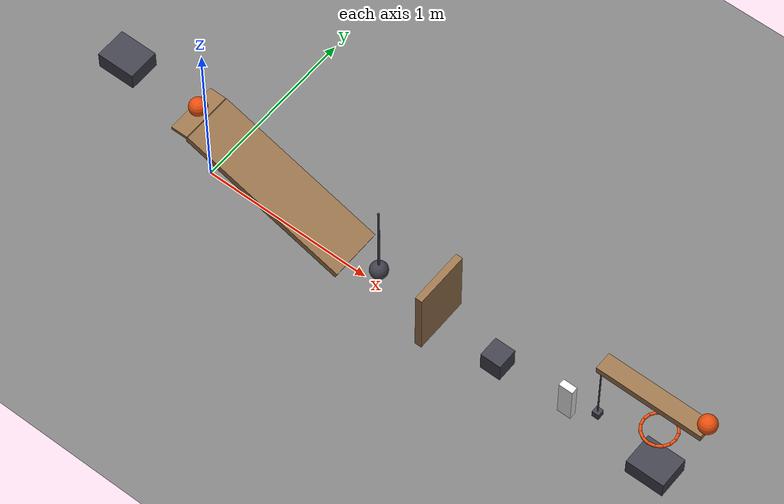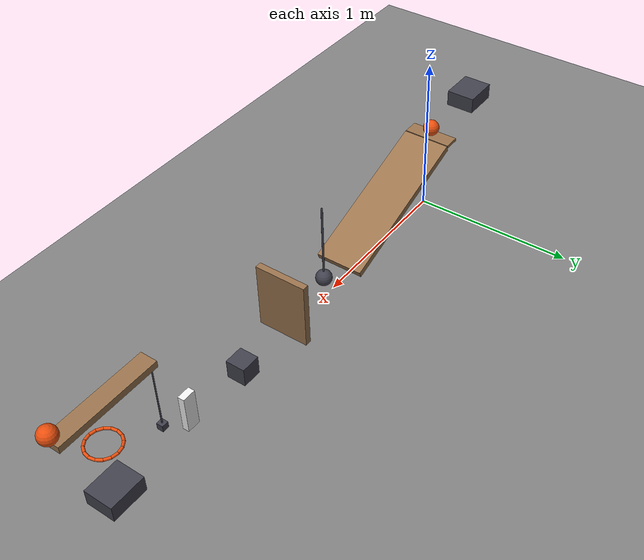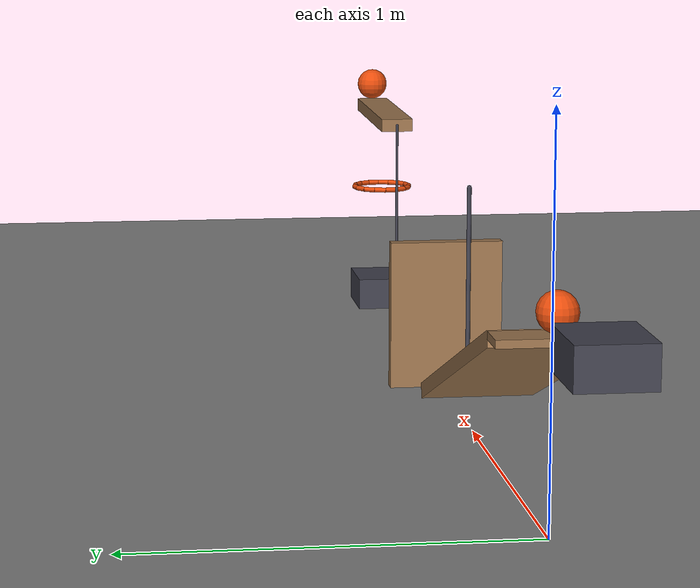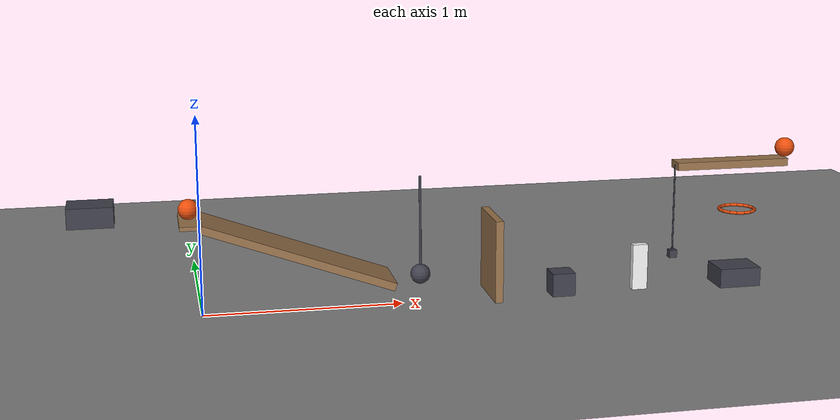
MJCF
<mujoco model="spring_cart_chain">
  <compiler angle="radian"/>
  <option timestep="0.002"/>
  <worldbody>
    <geom name="floor" type="plane" size="8 8 0.1" friction="0.68 0 0"/>
    <body name="ramp1">
      <geom name="ramp1" type="box" pos="0.469847 0 0.302216" size="0.5 0.15 0.02" euler="0 0.349066 0" friction="0.68 0 0" solref="0.01 0.690107" rgba="0.6 0.45 0.3 1"/>
    </body>
    <body name="ball1 seat">
      <geom name="ball1 seat" type="box" pos="-0.05 0 0.48202" size="0.05 0.15 0.01" friction="0.68 0 0" solref="0.01 0.690107" rgba="0.6 0.45 0.3 1"/>
    </body>
    <body name="ball1" pos="-0.05 0 0.54202">
      <freejoint/>
      <geom name="ball1" type="sphere" pos="0 0 0" size="0.05" mass="0.2" condim="6" friction="0.68 0 0" solref="0.01 0.690107" rgba="0.9 0.3 0.05 1"/>
    </body>
    <body name="cart1" pos="-0.51 0 0.54202">
      <joint name="cart1_track" type="slide" pos="0 0 0" axis="1 0 0" limited="true" range="-0.2 0.3" stiffness="18" springref="0" damping="0.2"/>
      <geom name="cart1" type="box" pos="0 0 0" size="0.11 0.09 0.05" mass="0.5" friction="0.68 0 0" solref="0.01 0.690107" rgba="0.25 0.25 0.3 1"/>
    </body>
    <body name="pendulum1" pos="2.17939 0 0.8">
      <joint name="pendulum1_hinge" type="hinge" pos="0 0 0" axis="0 1 0" limited="true" range="-0.698132 0" damping="0.04"/>
      <geom name="pendulum1" type="sphere" pos="-1.08969 0 -0.65" size="0.05" mass="0.3" friction="0.68 0 0" solref="0.01 0.690107" rgba="0.25 0.25 0.3 1"/>
      <geom name="pendulum rigid rod" type="capsule" size="0.006" fromto="-1.08969 0 -0.15 -1.08969 0 -0.6" mass="0.05" friction="0.68 0 0" solref="0.01 0.690107" rgba="0.25 0.25 0.3 1"/>
    </body>
    <body name="door1" pos="1.46109 -0.16 0.23">
      <joint name="door1_hinge" type="hinge" pos="0 0 0" axis="0 0 1" limited="true" range="-1.22173 0" damping="0.04"/>
      <geom name="door1" type="box" pos="0 0.16 0" size="0.02 0.16 0.21" mass="0.45" friction="0.68 0 0" solref="0.01 0.690107" rgba="0.6 0.45 0.3 1"/>
    </body>
    <body name="block1" pos="1.82863 0 0.06">
      <freejoint/>
      <geom name="block1" type="box" pos="0 0 0" size="0.06 0.06 0.06" mass="0.35" friction="0.68 0 0" solref="0.01 0.690107" rgba="0.25 0.25 0.3 1"/>
    </body>
    <body name="domino1" pos="2.24863 0 0.12">
      <freejoint/>
      <geom name="domino1" type="box" pos="0 0 0" size="0.04 0.02 0.12" mass="0.25" friction="0.68 0 0" solref="0.01 0.690107" rgba="0.95 0.95 0.95 1"/>
    </body>
    <body name="lever1" pos="5.45726 0 1.3">
      <joint name="lever1_hinge" type="hinge" pos="0 0 0" axis="0 1 0" limited="true" range="-0.785398 0" damping="0.04"/>
      <geom name="lever1" type="box" pos="-2.72863 0 -0.65" size="0.3 0.05 0.02" mass="0.498" friction="0.68 0 0" solref="0.01 0.690107" rgba="0.6 0.45 0.3 1"/>
      <geom name="lever drop link" type="capsule" size="0.004" fromto="-3.02863 0 -0.65 -3.02863 0 -1.12" mass="0.001" friction="0.68 0 0" solref="0.01 0.690107" rgba="0.25 0.25 0.3 1"/>
      <geom name="lever strike pad" type="box" pos="-3.02863 0 -1.12" size="0.02 0.02 0.02" mass="0.001" friction="0.68 0 0" solref="0.01 0.690107" rgba="0.25 0.25 0.3 1"/>
    </body>
    <body name="ball2" pos="3.02863 0 0.72">
      <freejoint/>
      <geom name="ball2" type="sphere" pos="0 0 0" size="0.05" mass="0.2" condim="6" friction="0.68 0 0" solref="0.01 0.690107" rgba="0.9 0.3 0.05 1"/>
    </body>
    <body name="ring1">
      <geom name="ring1_00" type="capsule" size="0.008" fromto="2.87063 0 0.4 2.86363 0.0352069 0.4" friction="0.68 0 0" solref="0.01 0.690107" rgba="0.9 0.3 0.05 1"/>
      <geom name="ring1_01" type="capsule" size="0.008" fromto="2.86363 0.0352069 0.4 2.84368 0.0650538 0.4" friction="0.68 0 0" solref="0.01 0.690107" rgba="0.9 0.3 0.05 1"/>
      <geom name="ring1_02" type="capsule" size="0.008" fromto="2.84368 0.0650538 0.4 2.81384 0.0849969 0.4" friction="0.68 0 0" solref="0.01 0.690107" rgba="0.9 0.3 0.05 1"/>
      <geom name="ring1_03" type="capsule" size="0.008" fromto="2.81384 0.0849969 0.4 2.77863 0.092 0.4" friction="0.68 0 0" solref="0.01 0.690107" rgba="0.9 0.3 0.05 1"/>
      <geom name="ring1_04" type="capsule" size="0.008" fromto="2.77863 0.092 0.4 2.74342 0.0849969 0.4" friction="0.68 0 0" solref="0.01 0.690107" rgba="0.9 0.3 0.05 1"/>
      <geom name="ring1_05" type="capsule" size="0.008" fromto="2.74342 0.0849969 0.4 2.71358 0.0650538 0.4" friction="0.68 0 0" solref="0.01 0.690107" rgba="0.9 0.3 0.05 1"/>
      <geom name="ring1_06" type="capsule" size="0.008" fromto="2.71358 0.0650538 0.4 2.69363 0.0352069 0.4" friction="0.68 0 0" solref="0.01 0.690107" rgba="0.9 0.3 0.05 1"/>
      <geom name="ring1_07" type="capsule" size="0.008" fromto="2.69363 0.0352069 0.4 2.68663 1.12668e-17 0.4" friction="0.68 0 0" solref="0.01 0.690107" rgba="0.9 0.3 0.05 1"/>
      <geom name="ring1_08" type="capsule" size="0.008" fromto="2.68663 1.12668e-17 0.4 2.69363 -0.0352069 0.4" friction="0.68 0 0" solref="0.01 0.690107" rgba="0.9 0.3 0.05 1"/>
      <geom name="ring1_09" type="capsule" size="0.008" fromto="2.69363 -0.0352069 0.4 2.71358 -0.0650538 0.4" friction="0.68 0 0" solref="0.01 0.690107" rgba="0.9 0.3 0.05 1"/>
      <geom name="ring1_10" type="capsule" size="0.008" fromto="2.71358 -0.0650538 0.4 2.74342 -0.0849969 0.4" friction="0.68 0 0" solref="0.01 0.690107" rgba="0.9 0.3 0.05 1"/>
      <geom name="ring1_11" type="capsule" size="0.008" fromto="2.74342 -0.0849969 0.4 2.77863 -0.092 0.4" friction="0.68 0 0" solref="0.01 0.690107" rgba="0.9 0.3 0.05 1"/>
      <geom name="ring1_12" type="capsule" size="0.008" fromto="2.77863 -0.092 0.4 2.81384 -0.0849969 0.4" friction="0.68 0 0" solref="0.01 0.690107" rgba="0.9 0.3 0.05 1"/>
      <geom name="ring1_13" type="capsule" size="0.008" fromto="2.81384 -0.0849969 0.4 2.84368 -0.0650538 0.4" friction="0.68 0 0" solref="0.01 0.690107" rgba="0.9 0.3 0.05 1"/>
      <geom name="ring1_14" type="capsule" size="0.008" fromto="2.84368 -0.0650538 0.4 2.86363 -0.0352069 0.4" friction="0.68 0 0" solref="0.01 0.690107" rgba="0.9 0.3 0.05 1"/>
      <geom name="ring1_15" type="capsule" size="0.008" fromto="2.86363 -0.0352069 0.4 2.87063 -2.25335e-17 0.4" friction="0.68 0 0" solref="0.01 0.690107" rgba="0.9 0.3 0.05 1"/>
    </body>
    <body name="cart2" pos="2.77863 0 0.05">
      <joint name="cart2_track" type="slide" pos="0 0 0" axis="1 0 0" limited="true" range="0 0.5" damping="0.2"/>
      <geom name="cart2" type="box" pos="0 0 0" size="0.11 0.09 0.05" mass="0.5" friction="0.68 0 0" solref="0.01 0.690107" rgba="0.25 0.25 0.3 1"/>
    </body>
  </worldbody>
  <keyframe>
    <key name="start" qpos="-0.05 0 0.54202 1 0 0 0 -0.2 0 0 1.82863 0 0.06 1 0 0 0 2.24863 0 0.12 1 0 0 0 0 3.02863 0 0.72 1 0 0 0 0" qvel="0 0 0 0 0 0 0 0 0 0 0 0 0 0 0 0 0 0 0 0 0 0 0 0 0 0 0 0 0"/>
  </keyframe>
</mujoco>
